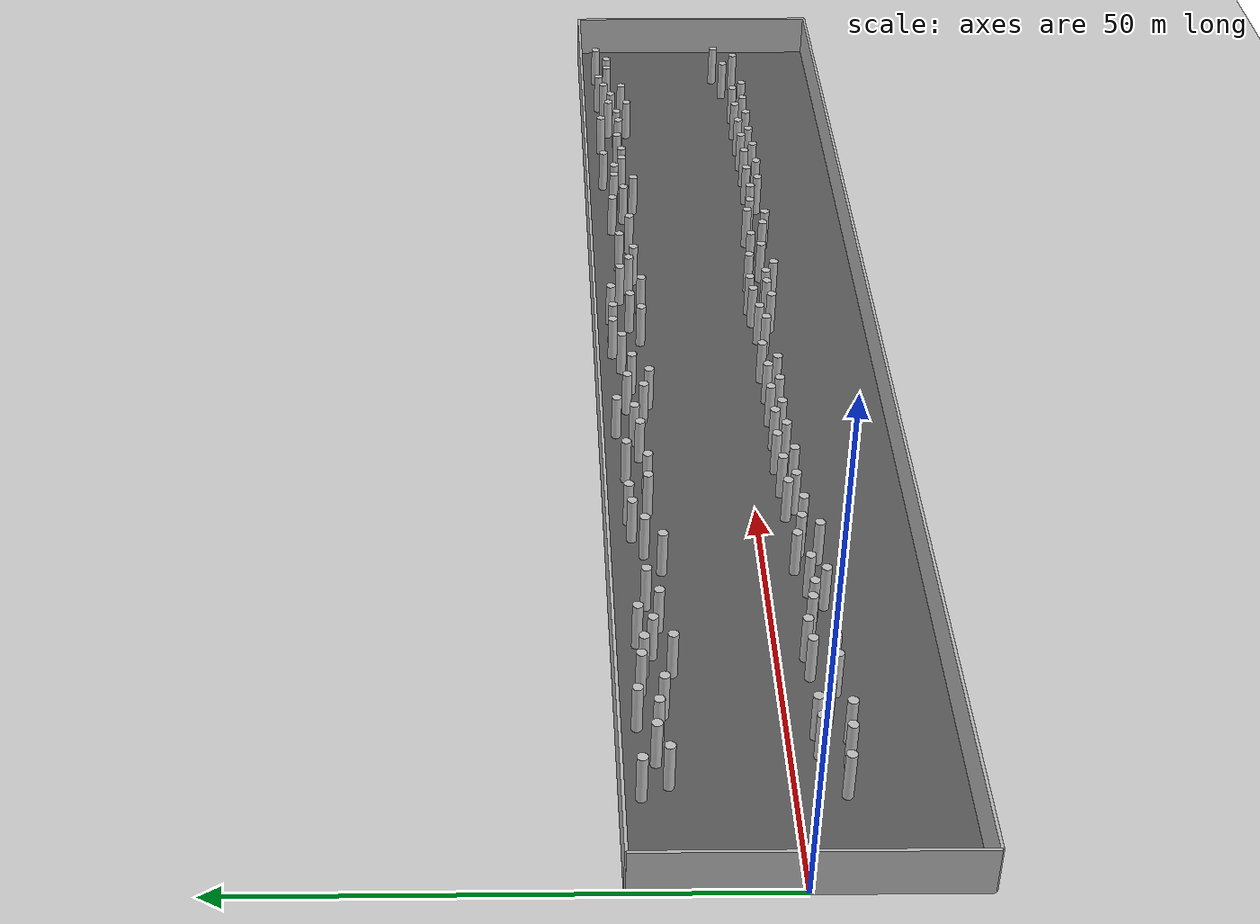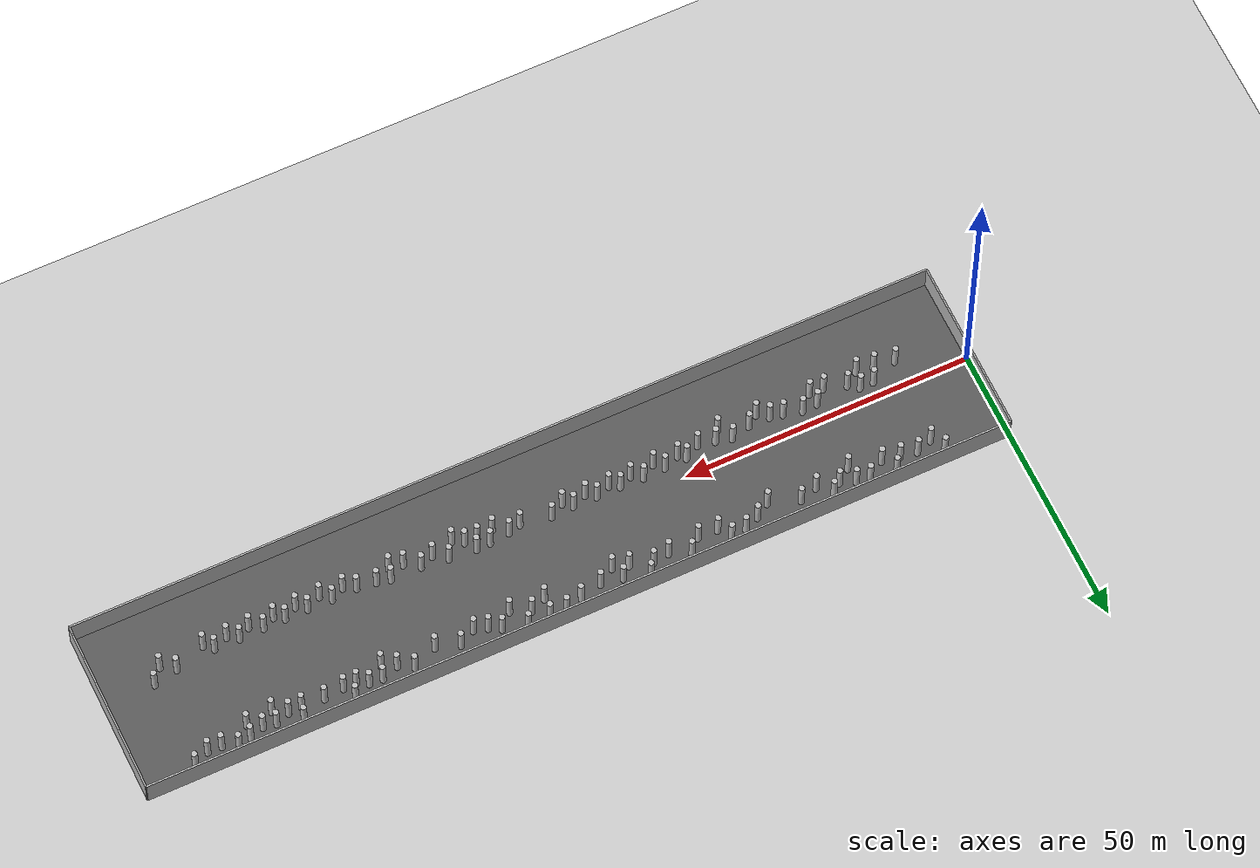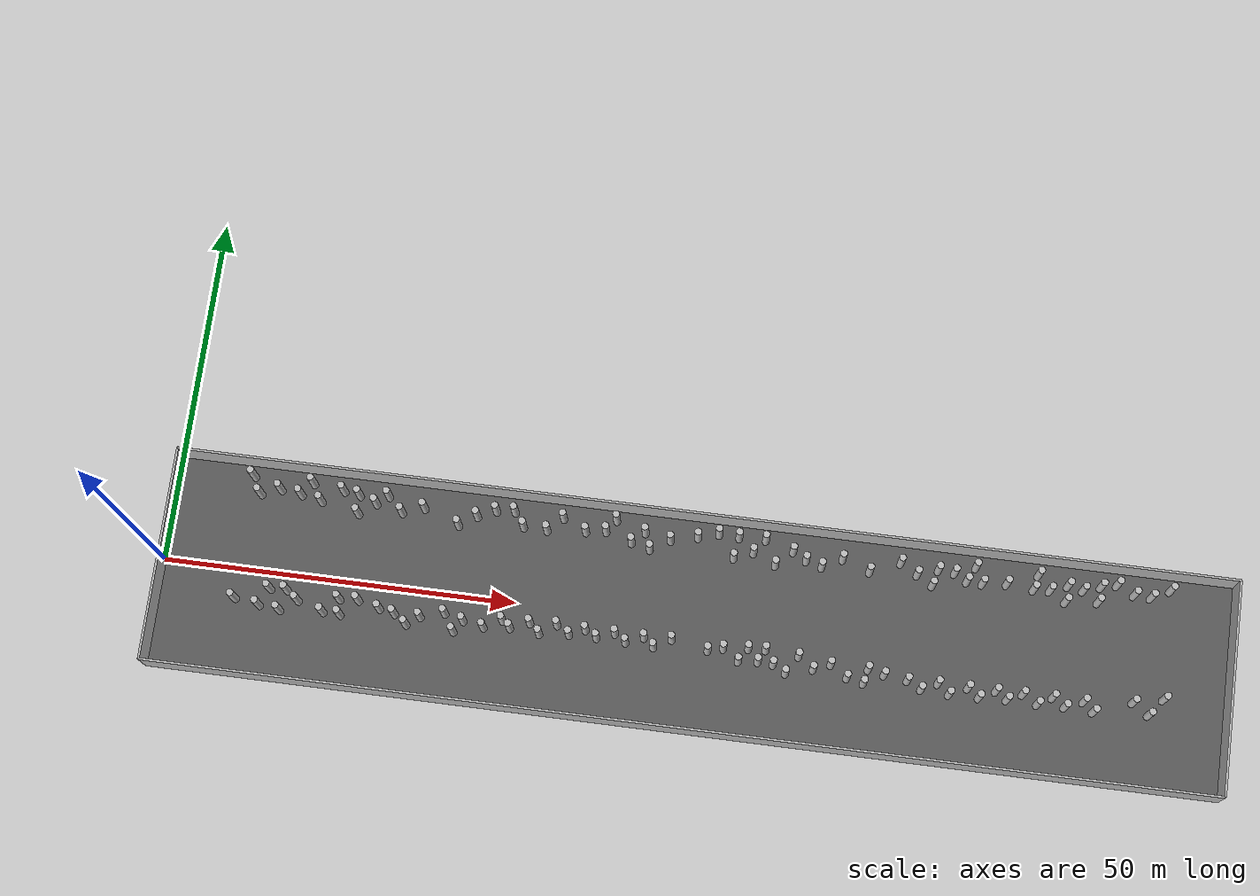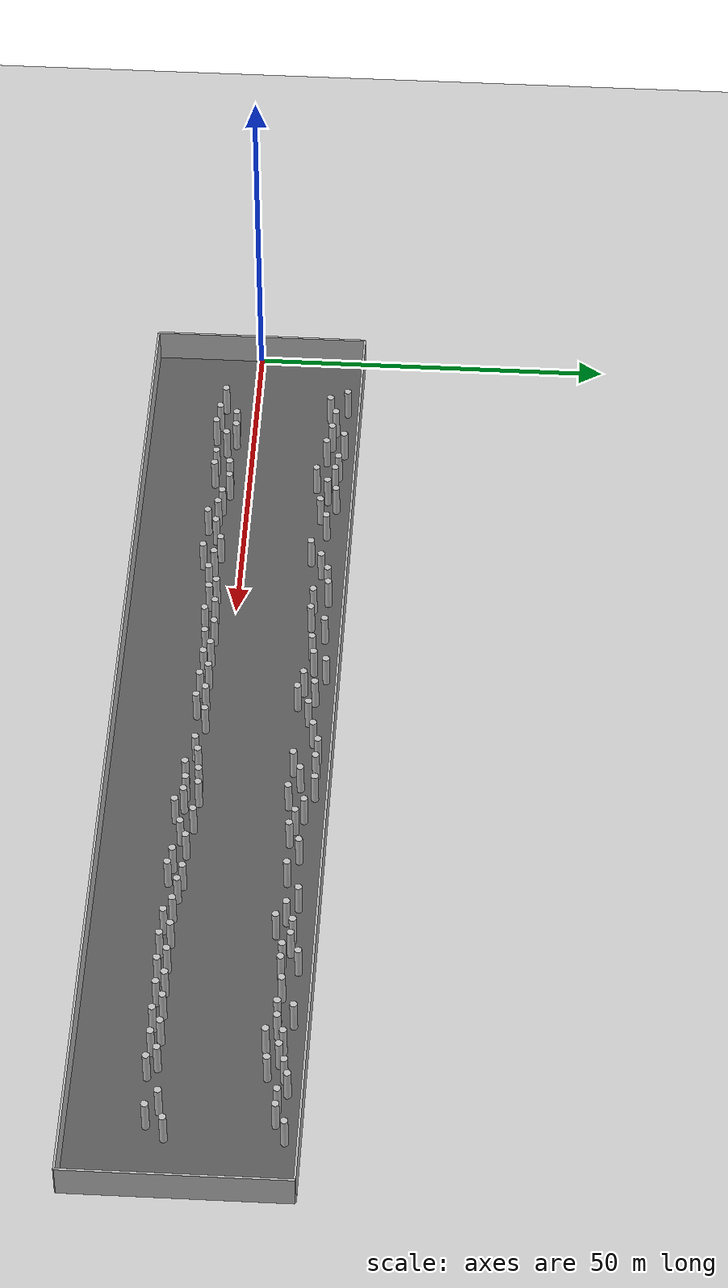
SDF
<?xml version="1.0" ?>
<sdf version="1.5">
  <world name="default">
    <plugin name="gazebo_ros_state" filename="libgazebo_ros_state.so">
      <ros>
        <namespace>/gazebo</namespace>
      </ros>
      <update_rate>20.0</update_rate>
    </plugin>

    <include><uri>model://sun</uri></include>
    <include><uri>model://ground_plane</uri></include>

    <model name="corridor_floor">
      <static>true</static>
      <pose>75 0 0.01 0 0 0</pose>
      <link name="link">
        <collision name="collision">
          <geometry><box><size>150 30 0.02</size></box></geometry>
        </collision>
        <visual name="visual">
          <geometry><box><size>150 30 0.02</size></box></geometry>
          <material>
            <ambient>0.25 0.25 0.25 1</ambient>
            <diffuse>0.35 0.35 0.35 1</diffuse>
          </material>
        </visual>
      </link>
    </model>

    <physics name="default_physics" default="0" type="ode">
      <gravity>0 0 -9.8066</gravity>
      <ode>
        <solver>
          <type>quick</type>
          <iters>10</iters>
          <sor>1.3</sor>
          <use_dynamic_moi_rescaling>0</use_dynamic_moi_rescaling>
        </solver>
        <constraints>
          <cfm>0</cfm>
          <erp>0.2</erp>
          <contact_max_correcting_vel>100</contact_max_correcting_vel>
          <contact_surface_layer>0.001</contact_surface_layer>
        </constraints>
      </ode>
      <max_step_size>0.004</max_step_size>
      <real_time_factor>1</real_time_factor>
      <real_time_update_rate>250</real_time_update_rate>
      <magnetic_field>6.0e-6 2.3e-5 -4.2e-5</magnetic_field>
    </physics>

    <model name="left_wall">
      <static>true</static>
      <pose>75 15.15 2.5 0 0 0</pose>
      <link name="link">
        <collision name="collision">
          <geometry><box><size>150 0.3 5</size></box></geometry>
        </collision>
        <visual name="visual">
          <geometry><box><size>150 0.3 5</size></box></geometry>
        </visual>
      </link>
    </model>

    <model name="right_wall">
      <static>true</static>
      <pose>75 -15.15 2.5 0 0 0</pose>
      <link name="link">
        <collision name="collision">
          <geometry><box><size>150 0.3 5</size></box></geometry>
        </collision>
        <visual name="visual">
          <geometry><box><size>150 0.3 5</size></box></geometry>
        </visual>
      </link>
    </model>

    <model name="start_wall">
      <static>true</static>
      <pose>0 0 2.5 0 0 0</pose>
      <link name="link">
        <collision name="collision">
          <geometry><box><size>0.3 30.3 5</size></box></geometry>
        </collision>
        <visual name="visual">
          <geometry><box><size>0.3 30.3 5</size></box></geometry>
        </visual>
      </link>
    </model>

    <model name="end_wall">
      <static>true</static>
      <pose>150 0 2.5 0 0 0</pose>
      <link name="link">
        <collision name="collision">
          <geometry><box><size>0.3 30.3 5</size></box></geometry>
        </collision>
        <visual name="visual">
          <geometry><box><size>0.3 30.3 5</size></box></geometry>
        </visual>
      </link>
    </model>

    <include><name>cylinder_000</name><uri>model://cylinder_r05_h5</uri><pose>31.265 -3.350 2.5 0 0 0</pose></include>
    <include><name>cylinder_001</name><uri>model://cylinder_r05_h5</uri><pose>43.146 -3.572 2.5 0 0 0</pose></include>
    <include><name>cylinder_002</name><uri>model://cylinder_r05_h5</uri><pose>33.436 -3.785 2.5 0 0 0</pose></include>
    <include><name>cylinder_003</name><uri>model://cylinder_r05_h5</uri><pose>17.375 -5.290 2.5 0 0 0</pose></include>
    <include><name>cylinder_004</name><uri>model://cylinder_r05_h5</uri><pose>37.101 -3.770 2.5 0 0 0</pose></include>
    <include><name>cylinder_005</name><uri>model://cylinder_r05_h5</uri><pose>41.977 -5.215 2.5 0 0 0</pose></include>
    <include><name>cylinder_006</name><uri>model://cylinder_r05_h5</uri><pose>23.441 -4.791 2.5 0 0 0</pose></include>
    <include><name>cylinder_007</name><uri>model://cylinder_r05_h5</uri><pose>25.514 -2.721 2.5 0 0 0</pose></include>
    <include><name>cylinder_008</name><uri>model://cylinder_r05_h5</uri><pose>35.259 -5.075 2.5 0 0 0</pose></include>
    <include><name>cylinder_009</name><uri>model://cylinder_r05_h5</uri><pose>18.002 -2.376 2.5 0 0 0</pose></include>
    <include><name>cylinder_010</name><uri>model://cylinder_r05_h5</uri><pose>28.156 -2.553 2.5 0 0 0</pose></include>
    <include><name>cylinder_011</name><uri>model://cylinder_r05_h5</uri><pose>25.885 -4.872 2.5 0 0 0</pose></include>
    <include><name>cylinder_012</name><uri>model://cylinder_r05_h5</uri><pose>15.612 -2.462 2.5 0 0 0</pose></include>
    <include><name>cylinder_013</name><uri>model://cylinder_r05_h5</uri><pose>19.707 -3.633 2.5 0 0 0</pose></include>
    <include><name>cylinder_014</name><uri>model://cylinder_r05_h5</uri><pose>40.442 -2.852 2.5 0 0 0</pose></include>
    <include><name>cylinder_015</name><uri>model://cylinder_r05_h5</uri><pose>46.062 -4.095 2.5 0 0 0</pose></include>
    <include><name>cylinder_016</name><uri>model://cylinder_r05_h5</uri><pose>48.596 -2.817 2.5 0 0 0</pose></include>
    <include><name>cylinder_017</name><uri>model://cylinder_r05_h5</uri><pose>49.767 -3.736 2.5 0 0 0</pose></include>
    <include><name>cylinder_018</name><uri>model://cylinder_r05_h5</uri><pose>52.468 -2.691 2.5 0 0 0</pose></include>
    <include><name>cylinder_019</name><uri>model://cylinder_r05_h5</uri><pose>53.939 -4.022 2.5 0 0 0</pose></include>
    <include><name>cylinder_020</name><uri>model://cylinder_r05_h5</uri><pose>56.299 -2.494 2.5 0 0 0</pose></include>
    <include><name>cylinder_021</name><uri>model://cylinder_r05_h5</uri><pose>58.105 -3.628 2.5 0 0 0</pose></include>
    <include><name>cylinder_022</name><uri>model://cylinder_r05_h5</uri><pose>60.322 -2.674 2.5 0 0 0</pose></include>
    <include><name>cylinder_023</name><uri>model://cylinder_r05_h5</uri><pose>61.955 -3.559 2.5 0 0 0</pose></include>
    <include><name>cylinder_024</name><uri>model://cylinder_r05_h5</uri><pose>64.462 -2.641 2.5 0 0 0</pose></include>
    <include><name>cylinder_025</name><uri>model://cylinder_r05_h5</uri><pose>66.056 -3.706 2.5 0 0 0</pose></include>
    <include><name>cylinder_026</name><uri>model://cylinder_r05_h5</uri><pose>68.556 -2.702 2.5 0 0 0</pose></include>
    <include><name>cylinder_027</name><uri>model://cylinder_r05_h5</uri><pose>70.009 -3.863 2.5 0 0 0</pose></include>
    <include><name>cylinder_028</name><uri>model://cylinder_r05_h5</uri><pose>72.437 -2.478 2.5 0 0 0</pose></include>
    <include><name>cylinder_029</name><uri>model://cylinder_r05_h5</uri><pose>84.738 -4.094 2.5 0 0 0</pose></include>
    <include><name>cylinder_030</name><uri>model://cylinder_r05_h5</uri><pose>82.010 -4.364 2.5 0 0 0</pose></include>
    <include><name>cylinder_031</name><uri>model://cylinder_r05_h5</uri><pose>86.883 -4.182 2.5 0 0 0</pose></include>
    <include><name>cylinder_032</name><uri>model://cylinder_r05_h5</uri><pose>99.631 -5.259 2.5 0 0 0</pose></include>
    <include><name>cylinder_033</name><uri>model://cylinder_r05_h5</uri><pose>92.487 -4.177 2.5 0 0 0</pose></include>
    <include><name>cylinder_034</name><uri>model://cylinder_r05_h5</uri><pose>90.290 -2.625 2.5 0 0 0</pose></include>
    <include><name>cylinder_035</name><uri>model://cylinder_r05_h5</uri><pose>79.745 -2.825 2.5 0 0 0</pose></include>
    <include><name>cylinder_036</name><uri>model://cylinder_r05_h5</uri><pose>94.857 -3.218 2.5 0 0 0</pose></include>
    <include><name>cylinder_037</name><uri>model://cylinder_r05_h5</uri><pose>102.394 -3.730 2.5 0 0 0</pose></include>
    <include><name>cylinder_038</name><uri>model://cylinder_r05_h5</uri><pose>100.101 -3.225 2.5 0 0 0</pose></include>
    <include><name>cylinder_039</name><uri>model://cylinder_r05_h5</uri><pose>85.628 -2.296 2.5 0 0 0</pose></include>
    <include><name>cylinder_040</name><uri>model://cylinder_r05_h5</uri><pose>97.273 -4.785 2.5 0 0 0</pose></include>
    <include><name>cylinder_041</name><uri>model://cylinder_r05_h5</uri><pose>83.209 -2.440 2.5 0 0 0</pose></include>
    <include><name>cylinder_042</name><uri>model://cylinder_r05_h5</uri><pose>77.595 -3.374 2.5 0 0 0</pose></include>
    <include><name>cylinder_043</name><uri>model://cylinder_r05_h5</uri><pose>88.707 -5.213 2.5 0 0 0</pose></include>
    <include><name>cylinder_044</name><uri>model://cylinder_r05_h5</uri><pose>107.665 -5.108 2.5 0 0 0</pose></include>
    <include><name>cylinder_045</name><uri>model://cylinder_r05_h5</uri><pose>105.662 -4.094 2.5 0 0 0</pose></include>
    <include><name>cylinder_046</name><uri>model://cylinder_r05_h5</uri><pose>111.601 -5.296 2.5 0 0 0</pose></include>
    <include><name>cylinder_047</name><uri>model://cylinder_r05_h5</uri><pose>109.926 -3.986 2.5 0 0 0</pose></include>
    <include><name>cylinder_048</name><uri>model://cylinder_r05_h5</uri><pose>115.747 -5.222 2.5 0 0 0</pose></include>
    <include><name>cylinder_049</name><uri>model://cylinder_r05_h5</uri><pose>114.140 -4.079 2.5 0 0 0</pose></include>
    <include><name>cylinder_050</name><uri>model://cylinder_r05_h5</uri><pose>119.641 -5.031 2.5 0 0 0</pose></include>
    <include><name>cylinder_051</name><uri>model://cylinder_r05_h5</uri><pose>118.030 -4.014 2.5 0 0 0</pose></include>
    <include><name>cylinder_052</name><uri>model://cylinder_r05_h5</uri><pose>123.878 -5.114 2.5 0 0 0</pose></include>
    <include><name>cylinder_053</name><uri>model://cylinder_r05_h5</uri><pose>121.764 -3.968 2.5 0 0 0</pose></include>
    <include><name>cylinder_054</name><uri>model://cylinder_r05_h5</uri><pose>127.695 -5.018 2.5 0 0 0</pose></include>
    <include><name>cylinder_055</name><uri>model://cylinder_r05_h5</uri><pose>125.929 -3.899 2.5 0 0 0</pose></include>
    <include><name>cylinder_056</name><uri>model://cylinder_r05_h5</uri><pose>131.674 -5.215 2.5 0 0 0</pose></include>
    <include><name>cylinder_057</name><uri>model://cylinder_r05_h5</uri><pose>130.235 -3.953 2.5 0 0 0</pose></include>
    <include><name>cylinder_058</name><uri>model://cylinder_r05_h5</uri><pose>10.855 -4.374 2.5 0 0 0</pose></include>
    <include><name>cylinder_059</name><uri>model://cylinder_r05_h5</uri><pose>14.406 -4.938 2.5 0 0 0</pose></include>
    <include><name>cylinder_060</name><uri>model://cylinder_r05_h5</uri><pose>139.312 -4.699 2.5 0 0 0</pose></include>
    <include><name>cylinder_061</name><uri>model://cylinder_r05_h5</uri><pose>137.023 -3.204 2.5 0 0 0</pose></include>
    <include><name>cylinder_062</name><uri>model://cylinder_r05_h5</uri><pose>141.219 -2.260 2.5 0 0 0</pose></include>
    <include><name>cylinder_063</name><uri>model://cylinder_r05_h5</uri><pose>61.290 11.691 2.5 0 0 0</pose></include>
    <include><name>cylinder_064</name><uri>model://cylinder_r05_h5</uri><pose>35.359 11.758 2.5 0 0 0</pose></include>
    <include><name>cylinder_065</name><uri>model://cylinder_r05_h5</uri><pose>65.033 10.559 2.5 0 0 0</pose></include>
    <include><name>cylinder_066</name><uri>model://cylinder_r05_h5</uri><pose>122.415 13.095 2.5 0 0 0</pose></include>
    <include><name>cylinder_067</name><uri>model://cylinder_r05_h5</uri><pose>135.962 11.930 2.5 0 0 0</pose></include>
    <include><name>cylinder_068</name><uri>model://cylinder_r05_h5</uri><pose>131.259 12.492 2.5 0 0 0</pose></include>
    <include><name>cylinder_069</name><uri>model://cylinder_r05_h5</uri><pose>126.637 12.038 2.5 0 0 0</pose></include>
    <include><name>cylinder_070</name><uri>model://cylinder_r05_h5</uri><pose>130.993 10.264 2.5 0 0 0</pose></include>
    <include><name>cylinder_071</name><uri>model://cylinder_r05_h5</uri><pose>128.807 11.667 2.5 0 0 0</pose></include>
    <include><name>cylinder_072</name><uri>model://cylinder_r05_h5</uri><pose>121.899 10.959 2.5 0 0 0</pose></include>
    <include><name>cylinder_073</name><uri>model://cylinder_r05_h5</uri><pose>45.515 12.613 2.5 0 0 0</pose></include>
    <include><name>cylinder_074</name><uri>model://cylinder_r05_h5</uri><pose>48.137 12.844 2.5 0 0 0</pose></include>
    <include><name>cylinder_075</name><uri>model://cylinder_r05_h5</uri><pose>79.596 10.124 2.5 0 0 0</pose></include>
    <include><name>cylinder_076</name><uri>model://cylinder_r05_h5</uri><pose>20.722 10.883 2.5 0 0 0</pose></include>
    <include><name>cylinder_077</name><uri>model://cylinder_r05_h5</uri><pose>23.662 12.766 2.5 0 0 0</pose></include>
    <include><name>cylinder_078</name><uri>model://cylinder_r05_h5</uri><pose>25.966 12.421 2.5 0 0 0</pose></include>
    <include><name>cylinder_079</name><uri>model://cylinder_r05_h5</uri><pose>133.479 13.054 2.5 0 0 0</pose></include>
    <include><name>cylinder_080</name><uri>model://cylinder_r05_h5</uri><pose>83.814 13.298 2.5 0 0 0</pose></include>
    <include><name>cylinder_081</name><uri>model://cylinder_r05_h5</uri><pose>30.099 12.812 2.5 0 0 0</pose></include>
    <include><name>cylinder_082</name><uri>model://cylinder_r05_h5</uri><pose>89.769 11.056 2.5 0 0 0</pose></include>
    <include><name>cylinder_083</name><uri>model://cylinder_r05_h5</uri><pose>52.995 10.746 2.5 0 0 0</pose></include>
    <include><name>cylinder_084</name><uri>model://cylinder_r05_h5</uri><pose>32.271 10.731 2.5 0 0 0</pose></include>
    <include><name>cylinder_085</name><uri>model://cylinder_r05_h5</uri><pose>85.533 9.843 2.5 0 0 0</pose></include>
    <include><name>cylinder_086</name><uri>model://cylinder_r05_h5</uri><pose>70.474 11.549 2.5 0 0 0</pose></include>
    <include><name>cylinder_087</name><uri>model://cylinder_r05_h5</uri><pose>105.475 10.990 2.5 0 0 0</pose></include>
    <include><name>cylinder_088</name><uri>model://cylinder_r05_h5</uri><pose>66.813 12.211 2.5 0 0 0</pose></include>
    <include><name>cylinder_089</name><uri>model://cylinder_r05_h5</uri><pose>82.284 11.240 2.5 0 0 0</pose></include>
    <include><name>cylinder_090</name><uri>model://cylinder_r05_h5</uri><pose>58.447 11.267 2.5 0 0 0</pose></include>
    <include><name>cylinder_091</name><uri>model://cylinder_r05_h5</uri><pose>118.091 11.258 2.5 0 0 0</pose></include>
    <include><name>cylinder_092</name><uri>model://cylinder_r05_h5</uri><pose>103.039 12.403 2.5 0 0 0</pose></include>
    <include><name>cylinder_093</name><uri>model://cylinder_r05_h5</uri><pose>94.845 11.915 2.5 0 0 0</pose></include>
    <include><name>cylinder_094</name><uri>model://cylinder_r05_h5</uri><pose>108.384 12.012 2.5 0 0 0</pose></include>
    <include><name>cylinder_095</name><uri>model://cylinder_r05_h5</uri><pose>140.971 13.188 2.5 0 0 0</pose></include>
    <include><name>cylinder_096</name><uri>model://cylinder_r05_h5</uri><pose>17.726 11.495 2.5 0 0 0</pose></include>
    <include><name>cylinder_097</name><uri>model://cylinder_r05_h5</uri><pose>74.279 12.447 2.5 0 0 0</pose></include>
    <include><name>cylinder_098</name><uri>model://cylinder_r05_h5</uri><pose>49.618 10.856 2.5 0 0 0</pose></include>
    <include><name>cylinder_099</name><uri>model://cylinder_r05_h5</uri><pose>77.183 13.295 2.5 0 0 0</pose></include>
    <include><name>cylinder_100</name><uri>model://cylinder_r05_h5</uri><pose>12.026 10.898 2.5 0 0 0</pose></include>
    <include><name>cylinder_101</name><uri>model://cylinder_r05_h5</uri><pose>98.789 10.599 2.5 0 0 0</pose></include>
    <include><name>cylinder_102</name><uri>model://cylinder_r05_h5</uri><pose>28.492 11.510 2.5 0 0 0</pose></include>
    <include><name>cylinder_103</name><uri>model://cylinder_r05_h5</uri><pose>80.031 13.187 2.5 0 0 0</pose></include>
    <include><name>cylinder_104</name><uri>model://cylinder_r05_h5</uri><pose>112.495 10.915 2.5 0 0 0</pose></include>
    <include><name>cylinder_105</name><uri>model://cylinder_r05_h5</uri><pose>40.472 9.932 2.5 0 0 0</pose></include>
    <include><name>cylinder_106</name><uri>model://cylinder_r05_h5</uri><pose>113.588 13.095 2.5 0 0 0</pose></include>
    <include><name>cylinder_107</name><uri>model://cylinder_r05_h5</uri><pose>87.834 12.122 2.5 0 0 0</pose></include>
    <include><name>cylinder_108</name><uri>model://cylinder_r05_h5</uri><pose>55.094 12.795 2.5 0 0 0</pose></include>
    <include><name>cylinder_109</name><uri>model://cylinder_r05_h5</uri><pose>42.932 11.529 2.5 0 0 0</pose></include>
    <include><name>cylinder_110</name><uri>model://cylinder_r05_h5</uri><pose>67.724 9.865 2.5 0 0 0</pose></include>
    <include><name>cylinder_111</name><uri>model://cylinder_r05_h5</uri><pose>10.689 13.316 2.5 0 0 0</pose></include>
    <include><name>cylinder_112</name><uri>model://cylinder_r05_h5</uri><pose>138.341 11.875 2.5 0 0 0</pose></include>
    <include><name>cylinder_113</name><uri>model://cylinder_r05_h5</uri><pose>62.574 13.468 2.5 0 0 0</pose></include>
    <include><name>cylinder_114</name><uri>model://cylinder_r05_h5</uri><pose>126.479 9.750 2.5 0 0 0</pose></include>
    <include><name>cylinder_115</name><uri>model://cylinder_r05_h5</uri><pose>19.214 13.320 2.5 0 0 0</pose></include>
    <include><name>cylinder_116</name><uri>model://cylinder_r05_h5</uri><pose>92.034 10.425 2.5 0 0 0</pose></include>
    <include><name>cylinder_117</name><uri>model://cylinder_r05_h5</uri><pose>124.188 11.097 2.5 0 0 0</pose></include>
    <include><name>cylinder_118</name><uri>model://cylinder_r05_h5</uri><pose>110.669 11.902 2.5 0 0 0</pose></include>
    <include><name>cylinder_119</name><uri>model://cylinder_r05_h5</uri><pose>14.769 11.852 2.5 0 0 0</pose></include>
    <include><name>cylinder_120</name><uri>model://cylinder_r05_h5</uri><pose>107.713 9.728 2.5 0 0 0</pose></include>
    <include><name>cylinder_121</name><uri>model://cylinder_r05_h5</uri><pose>114.680 10.875 2.5 0 0 0</pose></include>
    <include><name>cylinder_122</name><uri>model://cylinder_r05_h5</uri><pose>26.156 9.789 2.5 0 0 0</pose></include>

  </world>
</sdf>

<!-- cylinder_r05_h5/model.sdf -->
<sdf version="1.5">
  <model name="cylinder_r05_h5">
    <static>true</static>
    <link name="link">
      <collision name="collision">
        <geometry>
          <cylinder>
            <radius>0.5</radius>
            <length>5</length>
          </cylinder>
        </geometry>
      </collision>
      <visual name="visual">
        <geometry>
          <cylinder>
            <radius>0.5</radius>
            <length>5</length>
          </cylinder>
        </geometry>
        <material>
          <ambient>0.5 0.5 0.5 1</ambient>
          <diffuse>0.75 0.75 0.75 1</diffuse>
        </material>
      </visual>
    </link>
  </model>
</sdf>
